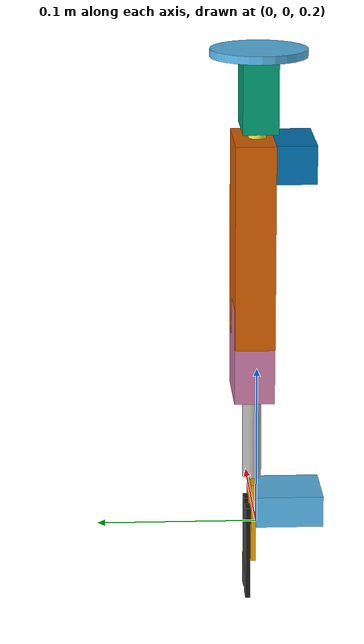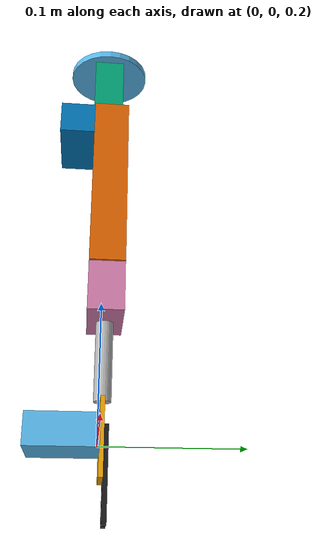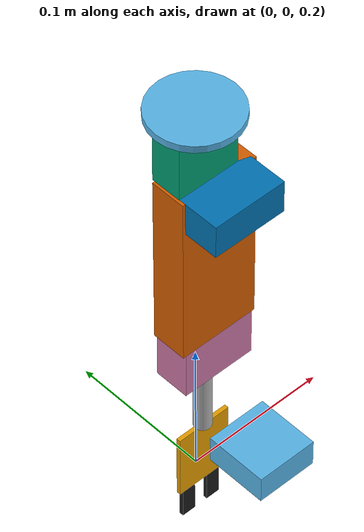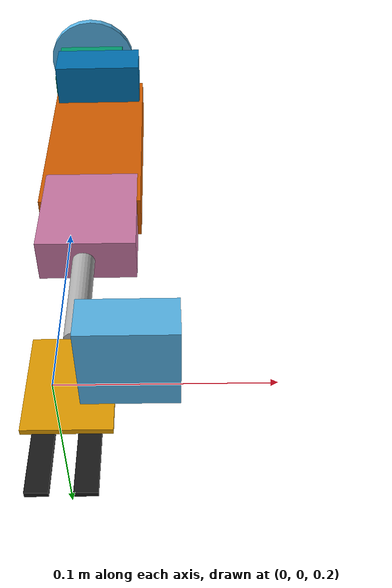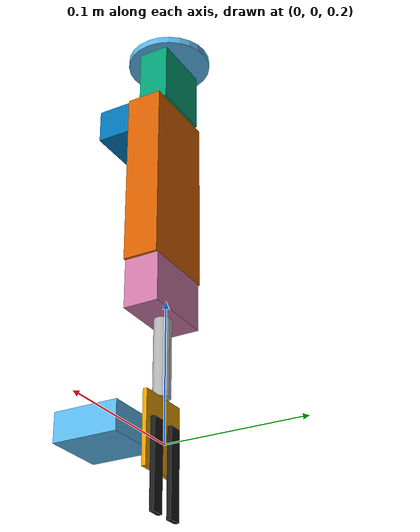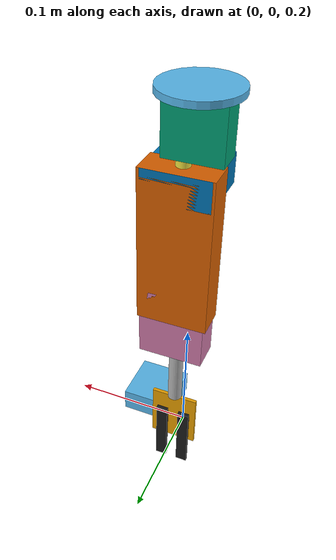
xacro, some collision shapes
<?xml version="1.0"?>
<robot xmlns:xacro="http://www.ros.org/wiki/xacro" name="manipulator">

    <xacro:arg name="is_sim" default="true"/>
    <xacro:property name="is_sim" value="$(arg is_sim)"/>

    <xacro:include filename="$(find manipulator_description)/urdf/manipulator_gazebo.xacro"/>
    <xacro:include filename="$(find manipulator_description)/urdf/manipulator_ros2_control.xacro"/>

    <!-- Links -->
    <link name="world"/>

    <link name="base_plate">
        <inertial>
            <origin xyz="0 0 0" rpy="0 0 0"/>
            <mass value="0.050"/>  <!-- Example: 50g plate -->
            <inertia
                ixx="0.00001129"
                ixy="0.0"
                ixz="0.0"
                iyy="0.00001129"
                iyz="0.0"
                izz="0.00002250"/>
        </inertial>

        <visual>
            <origin xyz="0 0 0" rpy="0 0 0"/>
            <geometry>
                <cylinder radius="0.03" length="0.005"/>
            </geometry>
        </visual>

        <collision>
            <origin xyz="0 0 0" rpy="0 0 0"/>
            <geometry>
                <cylinder radius="0.03" length="0.005"/>
            </geometry>
        </collision>
    </link>

    <joint name="base_plate_fixed" type="fixed">
        <parent link="world"/>
        <child link="base_plate"/>
        <origin xyz="0 0 0.5" rpy="0 0 0"/>  <!-- Raised whole model +0.5 m along Z -->
    </joint>

    <link name="motor_1">
        <inertial>
            <origin xyz="0 0 0" rpy="0 0 0"/>
            <mass value="0.075"/>

            <inertia
                ixx="1.512500e-05" ixy="0" ixz="0"
                iyy="2.475625e-05" iyz="0"
                izz="1.568125e-05"/>
        </inertial>

        <visual>
            <origin xyz="0 0 0" rpy="0 0 0"/>
            <geometry>
                <!-- Motor approximated as 45×22×44 mm box -->
                <box size="0.045 0.022 0.044"/>
            </geometry>
        </visual>

        <collision>
            <origin xyz="0 0 0" rpy="0 0 0"/>
            <geometry>
                <box size="0.045 0.022 0.044"/>
            </geometry>
        </collision>
    </link>

    <joint name="joint_motor_1" type="fixed">
        <parent link="base_plate"/>
        <child link="motor_1"/>

        <!-- Motor attached below the plate -->
        <origin xyz="0 0 -0.0245" rpy="0 0 0"/>
    </joint>

    <link name="razor_connector">
        <inertial>
            <origin xyz="0 0 0" rpy="0 0 0"/>
            <mass value="0.01"/>

            <inertia
                ixx="1.28958333e-07" ixy="0" ixz="0"
                iyy="1.28958333e-07" iyz="0"
                izz="1.51250000e-07"/>
        </inertial>

        <visual>
            <origin xyz="0 0 0" rpy="0 0 0"/>
            <geometry>
                <cylinder radius="0.0055" length="0.008"/>
            </geometry>
        </visual>

        <collision>
            <origin xyz="0 0 0" rpy="0 0 0"/>
            <geometry>
                <cylinder radius="0.0055" length="0.008"/>
            </geometry>
        </collision>
    </link>

    <joint name="joint_motor1_to_connector" type="fixed">
        <parent link="motor_1"/>
        <child link="razor_connector"/>

        <!-- Connector sits ABOVE motor_1 -->
        <origin xyz="0.0095 0 -0.026" rpy="0 0 0"/>
    </joint>

    <link name="motor_2">
        <inertial>
            <origin xyz="0 0 0" rpy="0 0 0"/>
            <mass value="0.082"/>

            <inertia
                ixx="2.10193333e-05" ixy="0" ixz="0"
                iyy="2.31308333e-05" iyz="0"
                izz="3.62781667e-05"/>
        </inertial>

        <visual>
            <origin xyz="0 0 0" rpy="0 0 0"/>
            <geometry>
                <!-- Motor approximated as 53×24×50 mm box -->
                <box size="0.053 0.050 0.024"/>
            </geometry>
        </visual>

        <collision>
            <origin xyz="0 0 0" rpy="0 0 0"/>
            <geometry>
                <box size="0.053 0.050 0.024"/>
            </geometry>
        </collision>
    </link>

    <joint name="joint_1" type="revolute">
        <parent link="razor_connector"/>
        <child link="motor_2"/>

        <!-- Motor 2 sits ABOVE the connector -->
        <origin xyz="0 -0.010 -0.016" rpy="0 0 0"/>

        <!-- Rotation around Z-axis -->
        <axis xyz="0 0 1"/>

        <!-- Reasonable limits (modify as needed) -->
        <limit lower="-2.35619" upper="2.35619" effort="1.0" velocity="4.7"/>
    </joint>

    <link name="h_arm">
        <inertial>
            <origin xyz="0 0 -0.052" rpy="0 0 0"/>
            <mass value="0.054"/>

            <inertia
                ixx="1.980045e-04" ixy="0" ixz="0"
                iyy="2.266425e-04" iyz="0"
                izz="3.426300e-05"/>
        </inertial>

        <visual>
            <origin xyz="0 0 -0.052" rpy="0 0 0"/>
            <geometry>
                <!-- 2 mm × 25 mm cross-section, height 128 mm -->
                <box size="0.057 0.025 0.128"/>
            </geometry>
        </visual>

        <collision>
            <origin xyz="0 0 -0.052" rpy="0 0 0"/>
            <geometry>
                <box size="0.057 0.025 0.128"/>
            </geometry>
        </collision>
    </link>

    <joint name="joint_2" type="revolute">
        <parent link="motor_2"/>
        <child link="h_arm"/>

        <!-- Arm sits Below motor_2 -->
        <origin xyz="0 0.0125 0" rpy="0 0 0"/>

        <!-- Rotation around X-axis -->
        <axis xyz="1 0 0"/>

        <limit lower="0" upper="1.57" effort="1.0" velocity="3.0"/>
    </joint>

    <link name="motor_3">
        <inertial>
            <origin xyz="0 0 -0.015" rpy="0 0 0"/>
            <mass value="0.085"/>

            <inertia
                ixx="4.90520833e-05" ixy="0" ixz="0"
                iyy="6.45220833e-05" iyz="0"
                izz="2.43241667e-05"/>
        </inertial>

        <visual>
            <origin xyz="0 0 -0.015" rpy="0 0 0"/>
            <geometry>
                <!-- 53 × 25 × 60 mm -->
                <box size="0.053 0.025 0.060"/>
            </geometry>
        </visual>

        <collision>
            <origin xyz="0 0 -0.015" rpy="0 0 0"/>
            <geometry>
                <box size="0.053 0.025 0.060"/>
            </geometry>
        </collision>
    </link>

    <joint name="joint_3" type="revolute">
        <parent link="h_arm"/>
        <child link="motor_3"/>

        <origin xyz="0 0 -0.106" rpy="0 0 0"/>
        <!-- Rotation around X-axis -->
        <axis xyz="1 0 0"/>
        <limit lower="-0.79" upper="0.79" effort="1.0" velocity="3.0"/>
    </joint>

    <link name="rod">
        <inertial>
            <origin xyz="0 0 0" rpy="0 0 0"/>
            <mass value="0.02"/>

            <inertia
                ixx="5.22166667e-06" ixy="0" ixz="0"
                iyy="5.22166667e-06" iyz="0"
                izz="3.60000000e-07"/>
        </inertial>

        <visual>
            <origin xyz="0 0 0" rpy="0 0 0"/>
            <geometry>
                <!-- r = 6 mm, h = 55 mm -->
                <cylinder radius="0.006" length="0.055"/>
            </geometry>
        </visual>

        <collision>
            <origin xyz="0 0 0" rpy="0 0 0"/>
            <geometry>
                <cylinder radius="0.006" length="0.055"/>
            </geometry>
        </collision>
    </link>

    <!-- Rod fixedly connected to Motor 3 -->
    <joint name="joint_motor3_to_rod" type="fixed">
        <parent link="motor_3"/>
        <child  link="rod"/>

        <!-- Rod center 0.0575 m above motor_3 center:
            0.5*0.060 (motor height) + 0.5*0.055 (rod length) -->
        <origin xyz="-0.0015 0 -0.0725" rpy="0 0 0"/>
    </joint>

    <link name="gripper_base">
        <inertial>
            <origin xyz="0 0 0" rpy="0 0 0"/>
            <mass value="0.020"/>

            <inertia
                ixx="4.18166667e-06" ixy="0" ixz="0"
                iyy="6.83333333e-06" iyz="0"
                izz="2.68166667e-06"/>
        </inertial>

        <visual>
            <origin xyz="0 0 0" rpy="0 0 0"/>
            <geometry>
                <!-- 40 × 3 × 50 mm plate -->
                <box size="0.040 0.003 0.050"/>
            </geometry>
        </visual>

        <collision>
            <origin xyz="0 0 0" rpy="0 0 0"/>
            <geometry>
                <box size="0.040 0.003 0.050"/>
            </geometry>
        </collision>
    </link>

    <joint name="joint_rod_to_gripper_base" type="fixed">
        <parent link="rod"/>
        <child  link="gripper_base"/>

        <!-- Gripper base mounted at the top end of the rod -->
        <origin xyz="0 0 -0.0525" rpy="0 0 0"/>
    </joint>

    <link name="motor_4">
        <inertial>
            <origin xyz="0 0 0" rpy="0 0 0"/>
            <mass value="0.055"/>

            <inertia
                ixx="1.11145833e-05" ixy="0" ixz="0"
                iyy="1.07066667e-05" iyz="0"
                izz="1.81545833e-05"/>
        </inertial>

        <visual>
            <origin xyz="0 0 0" rpy="0 0 0"/>
            <geometry>
                <!-- 44 × 20 × 45 mm block -->
                <box size="0.044 0.045 0.020"/>
            </geometry>
        </visual>

        <collision>
            <origin xyz="0 0 0" rpy="0 0 0"/>
            <geometry>
                <box size="0.044 0.045 0.020"/>
            </geometry>
        </collision>
    </link>

    <joint name="joint_gripperbase_to_motor4" type="fixed">
        <parent link="gripper_base"/>
        <child  link="motor_4"/>

        <!-- Motor 4 mounted on top of the gripper base -->
        <origin xyz="0.027 -0.024 -0.002" rpy="0 0 0"/>
    </joint>

    <link name="gripper_L">
        <inertial>
            <origin xyz="0 0 -0.022" rpy="0 0 0"/>
            <mass value="0.020"/>

            <inertia
                ixx="1.56950000e-05" ixy="0" ixz="0"
                iyy="1.58466667e-05" iyz="0"
                izz="1.81666667e-07"/>
        </inertial>

        <visual>
            <origin xyz="-0.009 -0.002 -0.075" rpy="-${PI / 2} -${PI / 2} 0"/>
            <geometry>
                <mesh filename="package://manipulator_description/meshes/left_finger.STL" scale="0.0015 0.0015 0.0015"/>
            </geometry>
            <material name="black">
                <color rgba="0.1 0.1 0.1 1.0"/>
            </material>
        </visual>

        <collision>
            <origin xyz="0 0 -0.022" rpy="0 0 0"/>
            <geometry>
                <box size="0.010 0.003 0.060"/>
            </geometry>
        </collision>
    </link>

    <joint name="joint_4" type="revolute">
        <parent link="gripper_base"/>
        <child  link="gripper_L"/>

        <!-- Gripper hinge location (adjust if needed) -->
        <origin xyz="-0.010 0.003 0" rpy="0 0 0"/>

        <!-- Rotation about Y-axis -->
        <axis xyz="0 1 0"/>

        <limit lower="0" upper="0.79" effort="0.6" velocity="2.0"/>
    </joint>

    <link name="gripper_R">
        <inertial>
            <origin xyz="0 0 -0.022" rpy="0 0 0"/>
            <mass value="0.020"/>

            <inertia
                ixx="1.56950000e-05" ixy="0" ixz="0"
                iyy="1.58466667e-05" iyz="0"
                izz="1.81666667e-07"/>
        </inertial>

        <visual>
            <origin xyz="-0.011 -0.002 -0.075" rpy="-${PI / 2} -${PI / 2} 0"/>
            <geometry>
                <mesh filename="package://manipulator_description/meshes/right_finger.STL" scale="0.0015 0.0015 0.0015"/>
            </geometry>
            <material name="black">
                <color rgba="0.1 0.1 0.1 1.0"/>
            </material>
        </visual>

        <collision>
            <origin xyz="0 0 -0.022" rpy="0 0 0"/>
            <geometry>
                <box size="0.010 0.003 0.060"/>
            </geometry>
        </collision>
    </link>

    <joint name="joint_5" type="revolute">
        <parent link="gripper_base"/>
        <child  link="gripper_R"/>

        <!-- Gripper hinge location (adjust if needed) -->
        <origin xyz="0.010 0.003 0" rpy="0 0 0"/>

        <!-- Rotation about Y-axis -->
        <axis xyz="0 1 0"/>

        <limit lower="-0.79" upper="0" effort="0.6" velocity="2.0"/>
        <mimic joint="joint_4" multiplier="-1"/>
    </joint>

</robot>

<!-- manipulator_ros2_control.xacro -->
<robot xmlns:xacro="http://www.ros.org/wiki/xacro" name="manipulator">

    <xacro:property name="PI" value="3.14159265359" />

    <ros2_control type="system" name="RobotSystem">

        <xacro:if value="${is_sim}">
            <hardware>
                <plugin>gz_ros2_control/GazeboSimSystem</plugin>
            </hardware>

            <!-- joint_5 mimics joint_4 with multiplier=-1 in the URDF -->
            <joint name="joint_5">
                <param name="mimic">joint_4</param>
                <param name="multiplier">-1</param>
                <state_interface name="position"/>
            </joint>
        </xacro:if>

        <xacro:unless value="${is_sim}">
            <hardware>
                <plugin>manipulator_controller/ManipulatorInterfaceSTS3215</plugin>
                <!-- STS3215 setup via external serial bridge/controller -->
                <param name="port">/dev/ttyACM0</param> <!-- USB device where the URT‑2 adapter shows up. -->
                <param name="baudrate">1000000</param>  <!--serial speed for the bus (1Mbps for STS3215)-->
                <param name="servo_ids">1,2,3</param>
                <param name="gpio_gripper">22</param>

                <!-- STS3215 register map (override if your firmware differs) -->
                <param name="goal_position_addr">0x2A</param> <!-- register address to write a target position. -->
                <param name="present_position_addr">0x38</param>  <!-- register address to read the actual position (feedback). -->

                <!-- Raw encoder range for STS3215 position -->
                <param name="position_raw_min">0</param>
                <param name="position_raw_max">4095</param>

                <!-- Servo angle range that maps to raw min/max -->
                <param name="position_rad_min">-1.57</param>
                <param name="position_rad_max">1.57</param>

                <!-- Default STS3215 motion profile -->
                <param name="servo_speed">1000</param>
                <param name="servo_acceleration">50</param>

                <!-- STS3215 tuning defaults -->
                <param name="tuning_enable">true</param>
                <param name="position_p_gain">32</param>
                <param name="position_d_gain">32</param>
                <param name="position_i_gain">0</param>
                <param name="deadband_cw">1</param>
                <param name="deadband_ccw">1</param>
                <param name="punch">16</param>

                <!-- Set true when firmware publishes measured servo position feedback -->
                <param name="feedback_from_hardware">true</param>
            </hardware>
        </xacro:unless>

        <!-- joint_1 (razor_connector -> motor_2) : URDF limits [-3.14, 3.14] -->
        <joint name="joint_1">
            <command_interface name="position">
                <param name="min">-1.57</param>
                <param name="max">1.57</param>
            </command_interface>
            <state_interface name="position"/>
        </joint>

        <!-- joint_2 (motor_2 -> h_arm_L) : URDF limits [-1.57, 1.57] -->
        <joint name="joint_2">
            <command_interface name="position">
                <param name="min">-0.79</param>
                <param name="max">1.57</param>
            </command_interface>
            <state_interface name="position"/>
        </joint>

        <!-- joint_3 (h_arm -> motor_3) : URDF limits [-1.57, 1.57] -->
        <joint name="joint_3">
            <command_interface name="position">
                <param name="min">-0.79</param>
                <param name="max">0.79</param>
            </command_interface>
            <state_interface name="position"/>
        </joint>

        <!-- joint_4 (gripper_L) : URDF limits [0, 1.2] -->
        <joint name="joint_4">
            <command_interface name="position">
                <param name="min">0.0</param>
                <param name="max">0.79</param>
            </command_interface>
            <state_interface name="position"/>
        </joint>

    </ros2_control>

</robot>
